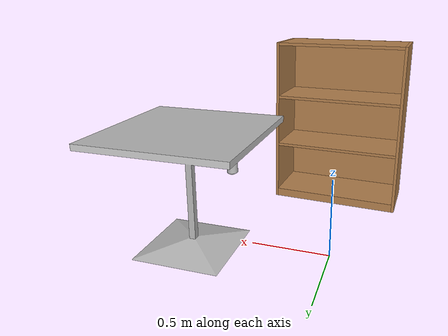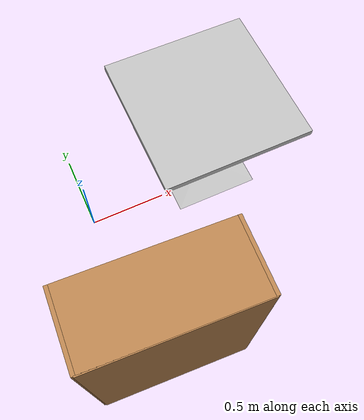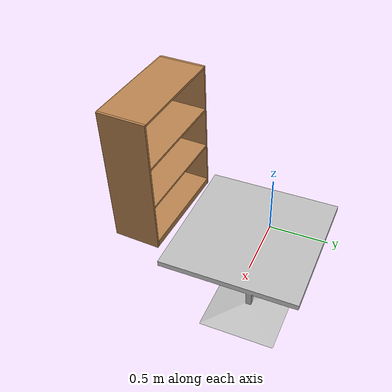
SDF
<sdf version="1.6">
 <world name="default">
  <light name="sun" type="directional">
   <pose>0 0 10 0 -0 0</pose>
   <diffuse>0.8 0.8 0.8 1</diffuse>
   <specular>0.1 0.1 0.1 1</specular>
   <attenuation>
    <range>1000</range>
    <constant>0.9</constant>
    <linear>0.01</linear>
    <quadratic>0.001</quadratic>
   </attenuation>
   <direction>-0.5 0.5 -1</direction>
  </light>
  <scene>
   <ambient>0.2 0.2 0.2 1</ambient>
   <background>1 1 1 1</background>
   <shadows>0</shadows>
   <grid>1</grid>
   <origin_visual>1</origin_visual>
  </scene>
  <gravity>0 0 -9.8</gravity>
  <magnetic_field>6e-06 2.3e-05 -4.2e-05</magnetic_field>
  <atmosphere type="adiabatic"/>
  <physics name="default_physics" default="0" type="dart">
   <max_step_size>0.001</max_step_size>
   <real_time_factor>1</real_time_factor>
   <real_time_update_rate>1000</real_time_update_rate>
  </physics>
  <spherical_coordinates>
   <surface_model>EARTH_WGS84</surface_model>
   <latitude_deg>0</latitude_deg>
   <longitude_deg>0</longitude_deg>
   <elevation>0</elevation>
   <heading_deg>0</heading_deg>
  </spherical_coordinates>
  <model name="cafe_table">
   <static>1</static>
   <link name="link">
    <collision name="surface">
     <pose>0 0 0.755 0 -0 0</pose>
     <geometry><box><size>0.913 0.913 0.04</size></box></geometry>
    </collision>
    <collision name="column">
     <pose>0 0 0.37 0 -0 0</pose>
     <geometry><box><size>0.042 0.042 0.74</size></box></geometry>
    </collision>
    <collision name="base">
     <pose>0 0 0.02 0 -0 0</pose>
     <geometry><box><size>0.56 0.56 0.04</size></box></geometry>
    </collision>
    <visual name="visual">
     <geometry><mesh><uri>model://cafe_table/meshes/cafe_table.dae</uri><scale>1 1 1</scale></mesh></geometry>
    </visual>
   </link>
   <pose>0.854693 0.128899 0 0 -0 0</pose>
  </model>
  <model name="coke_can">
   <link name="link">
    <inertial>
     <pose>-0.01 -0.012 0.15 0 -0 0</pose>
     <mass>0.39</mass>
     <inertia><ixx>0.00058</ixx><ixy>0</ixy><ixz>0</ixz><iyy>0.00058</iyy><iyz>0</iyz><izz>0.00019</izz></inertia>
    </inertial>
    <collision name="collision">
     <pose>0 0 -0.46 0 -0 0</pose>
     <geometry><mesh><uri>model://coke_can/meshes/coke_can.dae</uri><scale>1 1 1</scale></mesh></geometry>
     <surface>
      <friction><ode><mu>1</mu><mu2>1</mu2></ode></friction>
      <contact><ode><kp>1e+07</kp><kd>1</kd><min_depth>0.001</min_depth><max_vel>0.1</max_vel></ode></contact>
     </surface>
    </collision>
    <visual name="visual">
     <pose>0 0 -0.46 0 -0 0</pose>
     <geometry><mesh><uri>model://coke_can/meshes/coke_can.dae</uri><scale>1 1 1</scale></mesh></geometry>
    </visual>
   </link>
   <pose>0.611763 0.065138 0.771107 -0.011209 0.004072 -9.3e-05</pose>
  </model>
  <model name="bookshelf">
   <static>1</static>
   <link name="link">
    <inertial><mass>1</mass></inertial>
    <collision name="back">
     <pose>0 0.005 0.6 0 -0 0</pose>
     <geometry><box><size>0.9 0.01 1.2</size></box></geometry>
    </collision>
    <visual name="visual1">
     <pose>0 0.005 0.6 0 -0 0</pose>
     <geometry><box><size>0.9 0.01 1.2</size></box></geometry>
     <material>
      <script><uri>file://media/materials/scripts/gazebo.material</uri><name>Gazebo/Wood</name></script>
     </material>
    </visual>
    <collision name="left_side">
     <pose>0.45 -0.195 0.6 0 -0 0</pose>
     <geometry><box><size>0.02 0.4 1.2</size></box></geometry>
    </collision>
    <visual name="visual2">
     <pose>0.45 -0.195 0.6 0 -0 0</pose>
     <geometry><box><size>0.02 0.4 1.2</size></box></geometry>
     <material>
      <script><uri>file://media/materials/scripts/gazebo.material</uri><name>Gazebo/Wood</name></script>
     </material>
    </visual>
    <collision name="right_side">
     <pose>-0.45 -0.195 0.6 0 -0 0</pose>
     <geometry><box><size>0.02 0.4 1.2</size></box></geometry>
    </collision>
    <visual name="visual3">
     <pose>-0.45 -0.195 0.6 0 -0 0</pose>
     <geometry><box><size>0.02 0.4 1.2</size></box></geometry>
     <material>
      <script><uri>file://media/materials/scripts/gazebo.material</uri><name>Gazebo/Wood</name></script>
     </material>
    </visual>
    <collision name="bottom">
     <pose>0 -0.195 0.03 0 -0 0</pose>
     <geometry><box><size>0.88 0.4 0.06</size></box></geometry>
    </collision>
    <visual name="visual4">
     <pose>0 -0.195 0.03 0 -0 0</pose>
     <geometry><box><size>0.88 0.4 0.06</size></box></geometry>
     <material>
      <script><uri>file://media/materials/scripts/gazebo.material</uri><name>Gazebo/Wood</name></script>
     </material>
    </visual>
    <collision name="top">
     <pose>0 -0.195 1.19 0 -0 0</pose>
     <geometry><box><size>0.88 0.4 0.02</size></box></geometry>
    </collision>
    <visual name="visual5">
     <pose>0 -0.195 1.19 0 -0 0</pose>
     <geometry><box><size>0.88 0.4 0.02</size></box></geometry>
     <material>
      <script><uri>file://media/materials/scripts/gazebo.material</uri><name>Gazebo/Wood</name></script>
     </material>
    </visual>
    <collision name="low_shelf">
     <pose>0 -0.195 0.43 0 -0 0</pose>
     <geometry><box><size>0.88 0.4 0.02</size></box></geometry>
    </collision>
    <visual name="visual6">
     <pose>0 -0.195 0.43 0 -0 0</pose>
     <geometry><box><size>0.88 0.4 0.02</size></box></geometry>
     <material>
      <script><uri>file://media/materials/scripts/gazebo.material</uri><name>Gazebo/Wood</name></script>
     </material>
    </visual>
    <collision name="high_shelf">
     <pose>0 -0.195 0.8 0 -0 0</pose>
     <geometry><box><size>0.88 0.4 0.02</size></box></geometry>
    </collision>
    <visual name="visual7">
     <pose>0 -0.195 0.8 0 -0 0</pose>
     <geometry><box><size>0.88 0.4 0.02</size></box></geometry>
     <material>
      <script><uri>file://media/materials/scripts/gazebo.material</uri><name>Gazebo/Wood</name></script>
     </material>
    </visual>
   </link>
   <pose>0.099534 -1.13982 0 0 -0 3.08995</pose>
  </model>
 </world>
</sdf>
